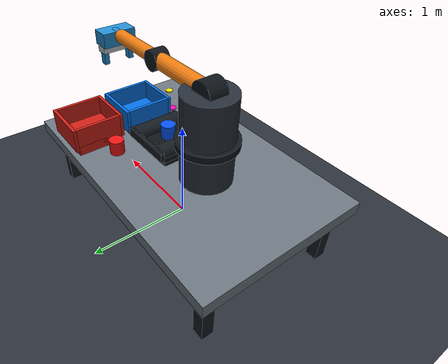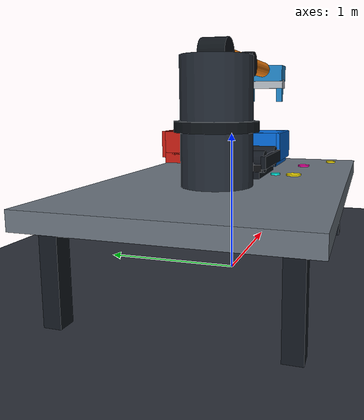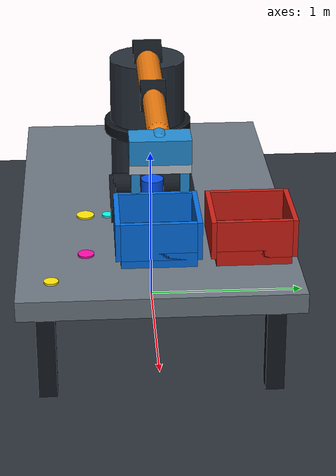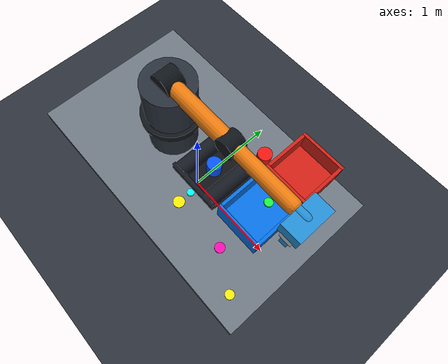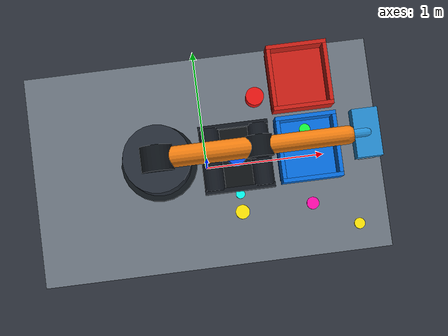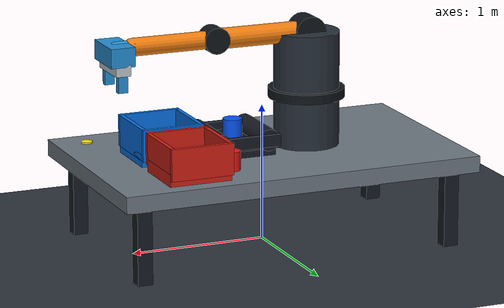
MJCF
<mujoco model="robot_arm_sorting">
  <compiler angle="radian" autolimits="true"/>
  <option timestep="0.002" gravity="0 0 -9.81" integrator="implicitfast" solver="Newton" cone="elliptic"/>
  <size nconmax="800" njmax="1600"/>
  <statistic center="0 0 0.78" extent="2.3"/>
  <visual>
    <global offwidth="640" offheight="480"/>
    <quality shadowsize="2048"/>
    <map znear="0.01" zfar="10"/>
    <headlight ambient="0.35 0.35 0.38" diffuse="0.72 0.72 0.70" specular="0.2 0.2 0.2"/>
  </visual>

  <asset>
    <texture name="floor_tex" type="2d" builtin="checker" rgb1="0.12 0.14 0.17" rgb2="0.22 0.24 0.28" width="512" height="512"/>
    <material name="floor_mat" texture="floor_tex" texrepeat="6 6" reflectance="0.08"/>
    <material name="table_mat" rgba="0.42 0.46 0.50 1" specular="0.15" roughness="0.68"/>
    <material name="frame_mat" rgba="0.08 0.10 0.13 1" specular="0.2" roughness="0.5"/>
    <material name="arm_base_mat" rgba="0.15 0.18 0.22 1" specular="0.32" roughness="0.34"/>
    <material name="arm_link_mat" rgba="0.92 0.48 0.06 1" specular="0.38" roughness="0.28"/>
    <material name="joint_mat" rgba="0.06 0.08 0.10 1" specular="0.42" roughness="0.25"/>
    <material name="gripper_mat" rgba="0.14 0.55 0.82 1" specular="0.35" roughness="0.28"/>
    <material name="steel_mat" rgba="0.74 0.77 0.80 1" specular="0.60" roughness="0.18"/>
    <material name="blue_mat" rgba="0.02 0.32 0.95 1" specular="0.42" roughness="0.24"/>
    <material name="red_mat" rgba="0.92 0.08 0.07 1" specular="0.42" roughness="0.24"/>
    <material name="blue_bin_mat" rgba="0.02 0.43 0.88 1" specular="0.24" roughness="0.42"/>
    <material name="red_bin_mat" rgba="0.80 0.12 0.08 1" specular="0.24" roughness="0.42"/>
    <material name="belt_mat" rgba="0.06 0.07 0.08 1" specular="0.12" roughness="0.82"/>
    <material name="marker_yellow" rgba="1 0.9 0.02 1" emission="0.35"/>
    <material name="marker_cyan" rgba="0.02 1 0.95 1" emission="0.35"/>
    <material name="marker_magenta" rgba="1 0.04 0.68 1" emission="0.35"/>
    <material name="marker_green" rgba="0.08 1 0.24 1" emission="0.35"/>
  </asset>

  <default>
    <joint damping="1.2" armature="0.015"/>
    <geom friction="0.72 0.01 0.002" condim="6" solref="0.008 1" solimp="0.9 0.95 0.001"/>
    <default class="world_part">
      <geom contype="1" conaffinity="7"/>
    </default>
    <default class="robot_part">
      <geom contype="2" conaffinity="7"/>
    </default>
    <default class="payload_part">
      <geom contype="4" conaffinity="7" solref="0.005 1"/>
    </default>
  </default>

  <worldbody>
    <light name="key_light" pos="-1.5 -2.2 4.2" dir="0.2 0.3 -1" directional="true" castshadow="true"/>
    <light name="fill_light" pos="2.0 1.2 3.0" dir="-0.5 -0.25 -1" directional="true" diffuse="0.42 0.45 0.5" specular="0.08 0.08 0.08"/>
    <camera name="sorting_camera" pos="2.2078 -3.1531 3.2472" quat="0.8381427770 0.4550743979 0.1434844065 0.2642654025" fovy="45"/>
    <geom name="ground_geom" class="world_part" type="plane" size="3.5 3.0 0.1" material="floor_mat"/>

    <body name="worktable" pos="0 0 0.62">
      <geom name="worktable_top_geom" class="world_part" type="box" size="1.35 0.82 0.06" material="table_mat" friction="0.9 0.01 0.001"/>
      <geom name="worktable_leg_fl" class="world_part" type="box" pos="-1.18 -0.66 -0.38" size="0.055 0.055 0.38" material="frame_mat"/>
      <geom name="worktable_leg_fr" class="world_part" type="box" pos="1.18 -0.66 -0.38" size="0.055 0.055 0.38" material="frame_mat"/>
      <geom name="worktable_leg_bl" class="world_part" type="box" pos="-1.18 0.66 -0.38" size="0.055 0.055 0.38" material="frame_mat"/>
      <geom name="worktable_leg_br" class="world_part" type="box" pos="1.18 0.66 -0.38" size="0.055 0.055 0.38" material="frame_mat"/>
    </body>

    <body name="conveyor_frame" pos="0.23 0 0.76">
      <geom name="conveyor_belt_geom" class="world_part" type="box" size="0.27 0.23 0.025" material="belt_mat"/>
      <geom name="conveyor_stand_geom" class="world_part" type="box" pos="0 0 -0.0525" size="0.25 0.21 0.0275" material="frame_mat"/>
      <geom name="conveyor_rail_left" class="world_part" type="box" pos="0 0.245 0.04" size="0.27 0.018 0.045" material="frame_mat"/>
      <geom name="conveyor_rail_right" class="world_part" type="box" pos="0 -0.245 0.04" size="0.27 0.018 0.045" material="frame_mat"/>
      <geom name="conveyor_roller_a" class="world_part" type="cylinder" pos="-0.19 0 0.04" quat="0.7071068 0.7071068 0 0" size="0.08 0.24" material="frame_mat"/>
      <geom name="conveyor_roller_b" class="world_part" type="cylinder" pos="0.19 0 0.04" quat="0.7071068 0.7071068 0 0" size="0.08 0.24" material="frame_mat"/>
    </body>

    <body name="arm_base" pos="-0.35 0 0.70">
      <geom name="arm_base_geom" class="world_part" type="cylinder" pos="0 0 0.40" size="0.24 0.42" material="arm_base_mat"/>
      <geom name="arm_base_ring" class="world_part" type="cylinder" pos="0 0 0.37" size="0.28 0.035" material="joint_mat"/>

      <body name="arm_upper_link" pos="0 0 0.82" gravcomp="1">
        <joint name="arm_shoulder" type="hinge" axis="0 1 0" range="-2.8 1.8" damping="3.0" armature="0.02"/>
        <geom name="arm_upper_geom" class="robot_part" type="capsule" fromto="0 0 0 0.72 0 0" size="0.075" mass="1.2" material="arm_link_mat"/>
        <geom name="arm_shoulder_hub" class="robot_part" type="cylinder" zaxis="0 1 0" size="0.115 0.09" mass="2.40" material="joint_mat"/>
        <body name="arm_forearm_link" pos="0.72 0 0" gravcomp="1">
          <joint name="arm_elbow" type="hinge" axis="0 1 0" range="-2.8 2.8" damping="2.4" armature="0.018"/>
          <geom name="arm_forearm_geom" class="robot_part" type="capsule" fromto="0 0 0 0.62 0 0" size="0.065" mass="0.9" material="arm_link_mat"/>
          <geom name="arm_elbow_hub" class="robot_part" type="cylinder" zaxis="0 1 0" size="0.095 0.075" mass="1.40" material="joint_mat"/>
          <body name="arm_wrist_link" pos="0.62 0 0" gravcomp="1">
            <joint name="arm_wrist" type="hinge" axis="0 1 0" range="-2.4 2.4" damping="1.4" armature="0.012"/>
            <geom name="arm_wrist_geom" class="robot_part" type="capsule" fromto="0 0 0 0.13 0 0" size="0.05" mass="0.25" material="gripper_mat"/>
            <body name="gripper" pos="0.13 0 0" gravcomp="1">
              <geom name="gripper_palm_geom" class="robot_part" type="box" pos="0 0 -0.03" size="0.09 0.17 0.07" mass="2.20" material="gripper_mat"/>
              <body name="tool_turret" pos="0 0 0" gravcomp="1">
                <joint name="tool_roll" type="hinge" axis="0 0 1" range="-1.65 1.65" damping="1.6" armature="0.008"/>
                <geom name="gripper_rail_geom" class="robot_part" type="box" pos="0 0 -0.125" size="0.055 0.17 0.04" mass="0.90" material="steel_mat"/>
                <!-- group 4: the tool centre is a kinematic reference the code
                     reads, not a marker for the viewer, so it is not drawn. -->
                <site name="arm_tcp" type="sphere" pos="0 0 -0.26" size="0.018" rgba="0.02 1 0.95 0.35" group="4"/>
                <body name="left_finger" pos="0 0.135 -0.135" gravcomp="1">
                  <joint name="gripper_left_slide" type="slide" axis="0 1 0" range="-0.075 0" damping="1.5"/>
                  <geom name="left_carriage_geom" class="robot_part" type="box" pos="0 0 0" size="0.035 0.025 0.025" mass="0.12" material="steel_mat"/>
                  <geom name="left_finger_geom" class="robot_part" type="box" pos="0 0 -0.065" size="0.035 0.025 0.085" mass="0.34" material="gripper_mat"/>
                </body>
                <body name="right_finger" pos="0 -0.135 -0.135" gravcomp="1">
                  <joint name="gripper_right_slide" type="slide" axis="0 1 0" range="0 0.075" damping="1.5"/>
                  <geom name="right_carriage_geom" class="robot_part" type="box" pos="0 0 0" size="0.035 0.025 0.025" mass="0.12" material="steel_mat"/>
                  <geom name="right_finger_geom" class="robot_part" type="box" pos="0 0 -0.065" size="0.035 0.025 0.085" mass="0.34" material="gripper_mat"/>
                </body>
              </body>
            </body>
          </body>
        </body>
      </body>
    </body>

    <body name="blue_part" pos="0.23 0 0.855">
      <freejoint name="blue_part_free"/>
      <geom name="blue_part_geom" class="payload_part" type="cylinder" size="0.07 0.07" mass="0.16" material="blue_mat" friction="0.72 0.01 0.003"/>
    </body>
    <body name="red_part" pos="0.43 0.45 0.75">
      <freejoint name="red_part_free"/>
      <geom name="red_part_geom" class="payload_part" type="cylinder" size="0.07 0.07" mass="0.16" material="red_mat" friction="0.72 0.01 0.003"/>
    </body>

    <body name="blue_bin" pos="0.78 0 0.70">
      <geom name="blue_bin_bottom" class="world_part" type="box" pos="0 0 0.045" size="0.23 0.22 0.045" material="blue_bin_mat"/>
      <geom name="blue_bin_left" class="world_part" type="box" pos="0 0.235 0.16" size="0.23 0.015 0.115" material="blue_bin_mat"/>
      <geom name="blue_bin_right" class="world_part" type="box" pos="0 -0.235 0.16" size="0.23 0.015 0.115" material="blue_bin_mat"/>
      <geom name="blue_bin_front" class="world_part" type="box" pos="0.215 0 0.16" size="0.015 0.22 0.115" material="blue_bin_mat"/>
      <geom name="blue_bin_back" class="world_part" type="box" pos="-0.215 0 0.16" size="0.015 0.22 0.115" material="blue_bin_mat"/>
    </body>
    <body name="red_bin" pos="0.78 0.55 0.70">
      <geom name="red_bin_bottom" class="world_part" type="box" pos="0 0 0.045" size="0.23 0.22 0.045" material="red_bin_mat"/>
      <geom name="red_bin_left" class="world_part" type="box" pos="0 0.235 0.16" size="0.23 0.015 0.115" material="red_bin_mat"/>
      <geom name="red_bin_right" class="world_part" type="box" pos="0 -0.235 0.16" size="0.23 0.015 0.115" material="red_bin_mat"/>
      <geom name="red_bin_front" class="world_part" type="box" pos="0.215 0 0.16" size="0.015 0.22 0.115" material="red_bin_mat"/>
      <geom name="red_bin_back" class="world_part" type="box" pos="-0.215 0 0.16" size="0.015 0.22 0.115" material="red_bin_mat"/>
    </body>

    <site name="approach_blue_part_marker" type="cylinder" pos="0.23 -0.42 0.686" size="0.055 0.006" material="marker_yellow" group="2"/>
    <site name="grasp_blue_part_marker" type="cylinder" pos="0.23 -0.28 0.686" size="0.036 0.006" material="marker_cyan" group="2"/>
    <site name="transfer_blue_bin_marker" type="cylinder" pos="0.78 -0.42 0.686" size="0.048 0.006" material="marker_magenta" group="2"/>
    <site name="release_blue_part_marker" type="cylinder" pos="0.78 0.15 0.796" size="0.042 0.006" material="marker_green" group="2"/>
    <site name="inspect_sorting_marker" type="cylinder" pos="1.12 -0.62 0.686" size="0.042 0.006" material="marker_yellow" group="2"/>
  </worldbody>

  <contact>
    <exclude name="pedestal_shoulder_mount" body1="arm_base" body2="arm_upper_link"/>
  </contact>

  <equality>
    <weld name="blue_part_grasp" body1="tool_turret" body2="blue_part" relpose="0 0 -0.26 1 0 0 0"
          active="false" solref="0.01 1" solimp="0.96 0.99 0.001"/>
  </equality>

  <actuator>
    <position name="arm_shoulder_motor" joint="arm_shoulder" kp="4000" kv="260" ctrlrange="-2.8 1.8" forcerange="-400 400"/>
    <position name="arm_elbow_motor" joint="arm_elbow" kp="2500" kv="150" ctrlrange="-2.8 2.8" forcerange="-300 300"/>
    <position name="arm_wrist_motor" joint="arm_wrist" kp="1200" kv="70" ctrlrange="-2.4 2.4" forcerange="-150 150"/>
    <position name="tool_roll_motor" joint="tool_roll" kp="400" kv="26" ctrlrange="-1.65 1.65" forcerange="-60 60"/>
    <position name="gripper_left_motor" joint="gripper_left_slide" kp="260" kv="16" ctrlrange="-0.075 0" forcerange="-40 40"/>
    <position name="gripper_right_motor" joint="gripper_right_slide" kp="260" kv="16" ctrlrange="0 0.075" forcerange="-40 40"/>
  </actuator>
</mujoco>
